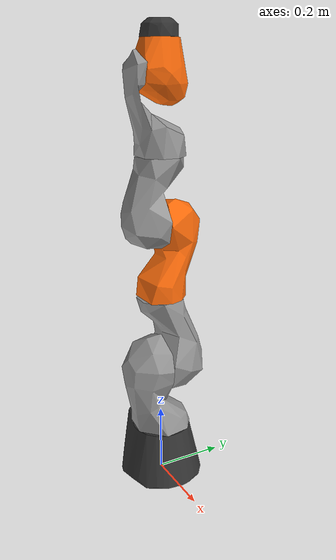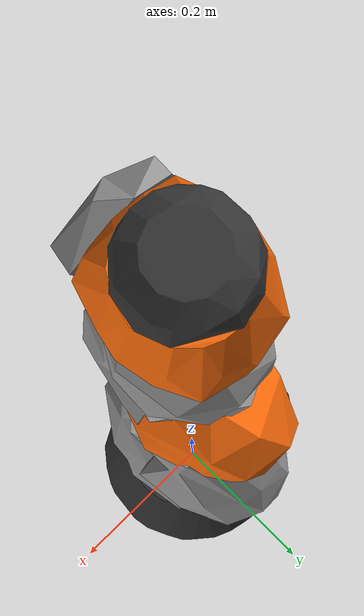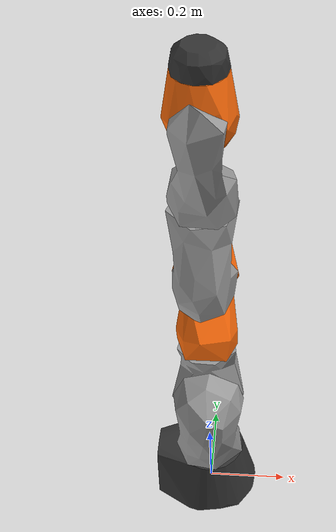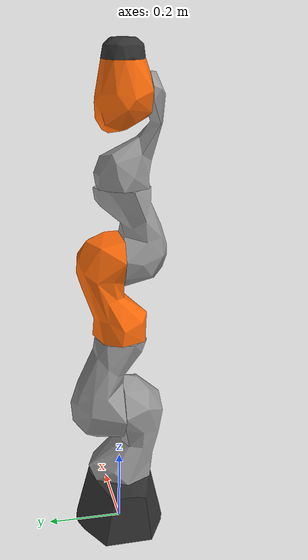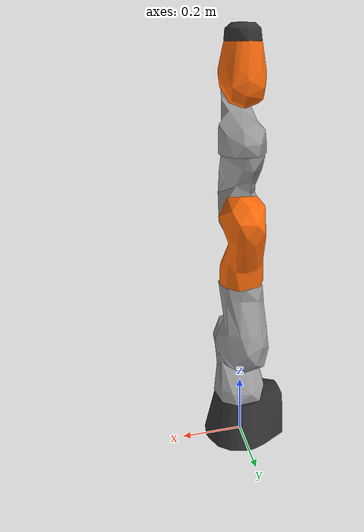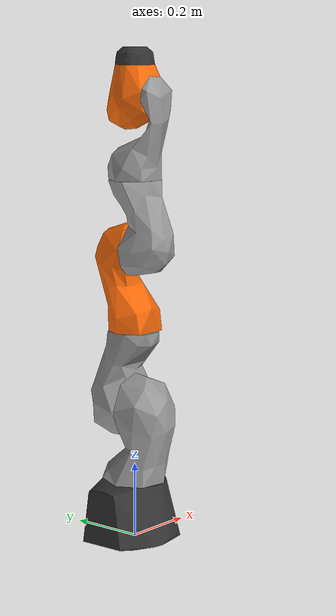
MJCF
<mujoco model="iiwa14">
  <compiler angle="radian"/>

  <asset>
    <mesh name="link_0" file="collision/link_0.obj"/>
    <mesh name="link_1" file="collision/link_1.obj"/>
    <mesh name="link_2" file="collision/link_2.obj"/>
    <mesh name="link_3" file="collision/link_3.obj"/>
    <mesh name="link_4" file="collision/link_4.obj"/>
    <mesh name="link_5" file="collision/link_5.obj"/>
    <mesh name="link_6" file="collision/link_6.obj"/>
    <mesh name="link_7" file="collision/link_7.obj"/>
  </asset>

  <!-- NOTE: All inertial properties are autogenerated from the values in the URDF -->
  <worldbody>
    <geom type="mesh" rgba="0.2 0.2 0.2 1" mesh="link_0"/>
    <body name="iiwa_link_1" pos="0 0 0.1575">
      <inertial pos="0 -0.03 0.12" quat="0.707107 0 0 0.707107" mass="5.76" diaginertia="0.0333 0.033 0.0123"/>
      <joint name="iiwa_joint_1" pos="0 0 0" axis="0 0 1" range="-2.96706 2.96706" actuatorfrcrange="-320 320"/>
      <geom type="mesh" rgba="0.6 0.6 0.6 1" mesh="link_1"/>
      <body name="iiwa_link_2" pos="0 0 0.2025" quat="0 0 0.707107 0.707107">
        <inertial pos="0.0003 0.059 0.042" quat="0.707107 0.707107 0 0" mass="6.35" diaginertia="0.0305 0.0304 0.011"/>
        <joint name="iiwa_joint_2" pos="0 0 0" axis="0 0 1" range="-2.0944 2.0944" actuatorfrcrange="-320 320"/>
        <geom type="mesh" rgba="0.6 0.6 0.6 1" mesh="link_2"/>
        <body name="iiwa_link_3" pos="0 0.2045 0" quat="0 0 0.707107 0.707107">
          <inertial pos="0 0.03 0.13" mass="3.5" diaginertia="0.025 0.0238 0.0076"/>
          <joint name="iiwa_joint_3" pos="0 0 0" axis="0 0 1" range="-2.96706 2.96706" actuatorfrcrange="-176 176"/>
          <geom type="mesh" rgba="1 0.423529 0.0392157 1" mesh="link_3"/>
          <body name="iiwa_link_4" pos="0 0 0.2155" quat="0.707107 0.707107 0 0">
            <inertial pos="0 0.067 0.034" quat="0.707107 0.707107 0 0" mass="3.5" diaginertia="0.017 0.0164 0.006"/>
            <joint name="iiwa_joint_4" pos="0 0 0" axis="0 0 1" range="-2.0944 2.0944" actuatorfrcrange="-176 176"/>
            <geom type="mesh" rgba="0.6 0.6 0.6 1" mesh="link_4"/>
            <body name="iiwa_link_5" pos="0 0.1845 0" quat="0 0 0.707107 0.707107">
              <inertial pos="0.0001 0.021 0.076" mass="3.5" diaginertia="0.01 0.0087 0.00449"/>
              <joint name="iiwa_joint_5" pos="0 0 0" axis="0 0 1" range="-2.96706 2.96706" actuatorfrcrange="-110 110"/>
              <geom type="mesh" rgba="0.6 0.6 0.6 1" mesh="link_5"/>
              <body name="iiwa_link_6" pos="0 0 0.2155" quat="0.707107 0.707107 0 0">
                <inertial pos="0 0.0006 0.0004" mass="1.8" diaginertia="0.0049 0.0047 0.0036"/>
                <joint name="iiwa_joint_6" pos="0 0 0" axis="0 0 1" range="-2.0944 2.0944" actuatorfrcrange="-40 40"/>
                <geom type="mesh" rgba="1 0.423529 0.0392157 1" mesh="link_6"/>
                <body name="iiwa_link_7" pos="0 0.081 0" quat="0 0 0.707107 0.707107">
                  <inertial pos="0 0 0.02" mass="1.2" diaginertia="0.001 0.001 0.001"/>
                  <joint name="iiwa_joint_7" pos="0 0 0" axis="0 0 1" range="-3.05433 3.05433" actuatorfrcrange="-40 40"/>
                  <geom type="mesh" rgba="0.2 0.2 0.2 1" mesh="link_7"/>
                </body>
              </body>
            </body>
          </body>
        </body>
      </body>
    </body>
  </worldbody>

  <!-- NOTE: These actuators were added manually as mujoco does not parse these from the URDF -->
  <actuator>
    <motor name="actuator1" joint="iiwa_joint_1" ctrlrange="-320 320" gear="1"/>
    <motor name="actuator2" joint="iiwa_joint_2" ctrlrange="-320 320" gear="1"/>
    <motor name="actuator3" joint="iiwa_joint_3" ctrlrange="-176 176" gear="1"/>
    <motor name="actuator4" joint="iiwa_joint_4" ctrlrange="-176 176" gear="1"/>
    <motor name="actuator5" joint="iiwa_joint_5" ctrlrange="-110 110" gear="1"/>
    <motor name="actuator6" joint="iiwa_joint_6" ctrlrange="-40 40" gear="1"/>
    <motor name="actuator7" joint="iiwa_joint_7" ctrlrange="-40 40" gear="1"/>
  </actuator>
</mujoco>
